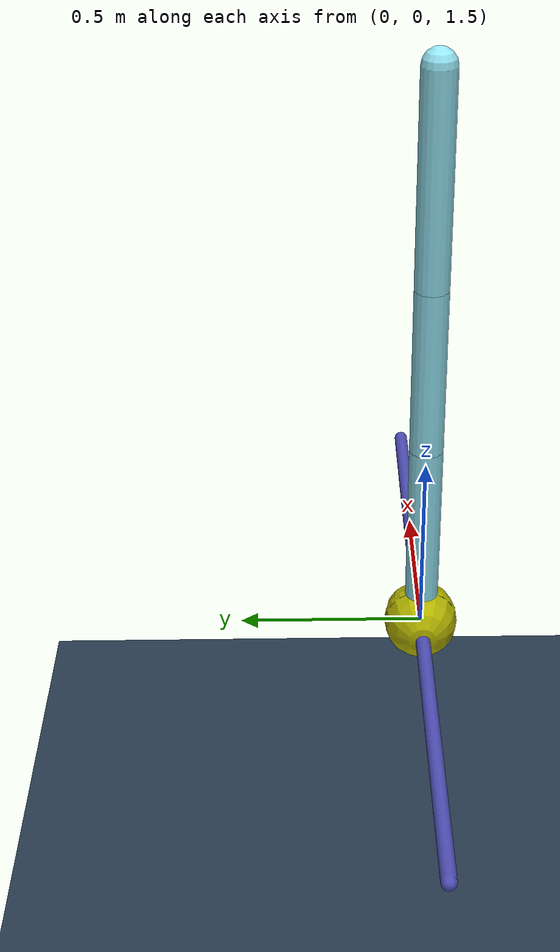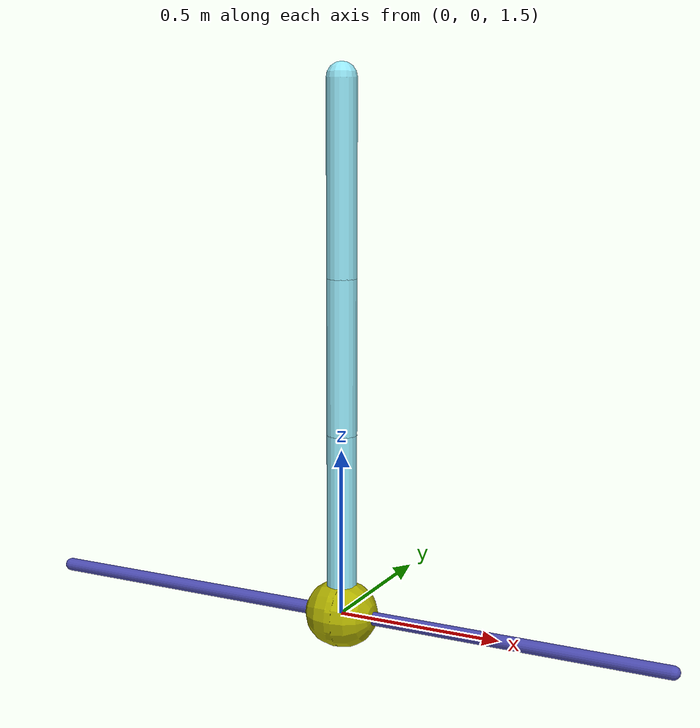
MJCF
<mujoco model="pendulum">
    <include file="../worlds/world.xml"/>
    <compiler coordinate="local" inertiafromgeom="true"/>
    <default>
        <joint damping="0"/>
        <geom contype="0" friction="0 0 0"/>
    </default>
    <option gravity="0 0 -9.81" integrator="RK4"/>
    <size nstack="3000"/>
    <worldbody>
        <geom name="rail" pos="0 0 1.5" quat="0.707 0 0.707 0" rgba="0.3 0.3 0.7 1" size="0.02 1" type="capsule"/>
        <body name="pole0" pos="0 0 1.5">
            <camera name="track_front" mode="fixed" pos="0 4 0" xyaxes="-1 0 0 0 0 1"/>
            <geom name="geom_b0" pos="0 0 0" quat="0.707 0 0.707 0" size="0.1 0.01" type="capsule" rgba="0.7 0.7 0 1"/>
            <site name="pole0_0" pos="0 0 0" size="0.01 0.01"/>
            <site name="pole0_1" pos="0 0 0" size="0.01 0.01"/>

        <body name="pole1" pos="0 0 0"><geom name="geom_b1" fromto="0 0 0 0 0 0.5487922209913434" rgba="0.588 0.909 0.972 1" size="0.045 0.2743961104956717" type="capsule" mass="0.7062455129986474"/><site name="pole1_0" pos="0 0 0" size="0.01 0.01"/><site name="pole1_1" pos="0 0 0.5487922209913434" size="0.01 0.01"/><joint name="pendulum1" axis="0 1 0" pos="0 0 0" type="hinge"/><body name="pole2" pos="0 0 0.5487922209913434"><geom name="geom_b2" fromto="0 0 0 0 0 0.4608648715081425" rgba="0.588 0.909 0.972 1" size="0.045 0.23043243575407124" type="capsule" mass="0.6949257463898793"/><site name="pole2_0" pos="0 0 0" size="0.01 0.01"/><site name="pole2_1" pos="0 0 0.4608648715081425" size="0.01 0.01"/><joint name="pendulum2" axis="0 1 0" pos="0 0 0" type="hinge"/><body name="pole3" pos="0 0 0.4608648715081425"><geom name="geom_b3" fromto="0 0 0 0 0 0.565656439890942" rgba="0.588 0.909 0.972 1" size="0.045 0.282828219945471" type="capsule" mass="0.8444899908360959"/><site name="pole3_0" pos="0 0 0" size="0.01 0.01"/><site name="pole3_1" pos="0 0 0.565656439890942" size="0.01 0.01"/><site name="tip" pos="0 0 0.565656439890942" size="0.01 0.01"/><joint name="pendulum3" axis="0 1 0" pos="0 0 0" type="hinge"/></body></body></body></body>
    </worldbody>
<actuator><motor name="pendulum1_motor" joint="pendulum1" forcerange="-50 50" ctrlrange="-20 20"/><motor name="pendulum2_motor" joint="pendulum2" forcerange="-50 50" ctrlrange="-20 20"/><motor name="pendulum3_motor" joint="pendulum3" forcerange="-50 50" ctrlrange="-20 20"/></actuator></mujoco>

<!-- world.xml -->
<mujoco>
    <statistic extent="2" meansize=".05"/>
    <option timestep="0.001" solver="Newton" iterations="50" tolerance="1e-5" jacobian="sparse" cone="pyramidal" gravity='0 0 -9.81'/>

    <visual>
        <rgba haze="0.15 0.25 0.35 1"/>
        <quality shadowsize="2048"/>
        <map stiffness="700" shadowscale="0.5" fogstart="10" fogend="15" zfar="40" haze="0.3"/>
        <headlight ambient=".2 .2 .2" diffuse=".8 .8 .8" specular="0.1 0.1 0.1"/>
    </visual>

    <asset>
        <texture name="skybox" type="skybox" builtin="gradient" rgb1=".1 .1 .30" rgb2="0 0 0" width="800" height="800" mark="random" markrgb="1 1 1"/>
        <texture name="texplane" type="2d" builtin="checker" rgb1=".2 .3 .4" rgb2=".1 0.15 0.2"
            width="512" height="512" mark="cross" markrgb=".8 .8 .8"/>
        <material name="matplane" reflectance="0.0" texture="texplane" texrepeat="1 1" texuniform="true"/>
    </asset>

    <worldbody>
        <geom name="ground" type="plane" size="0 0 1" pos="0 0 0" quat="1 0 0 0" material="matplane" condim="6"/>
        <light mode='trackcom' pos='0 0 5' dir='0 0 -1'/>
        <light directional='true' pos='0 0 3' dir='0 0 -1' diffuse='0.2 0.2 0.2' specular='0 0 0'/>
    </worldbody>
</mujoco>
